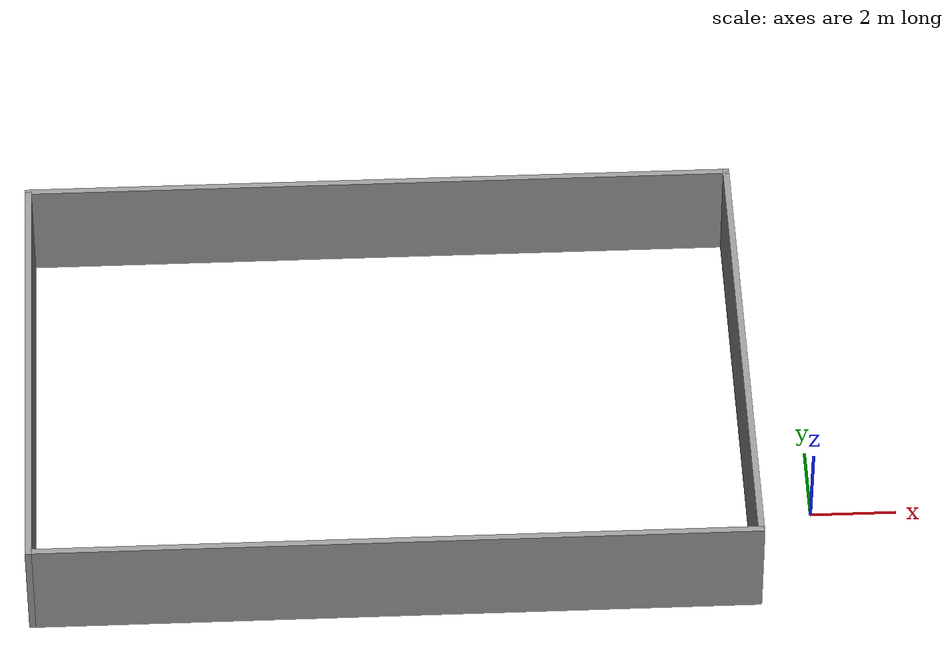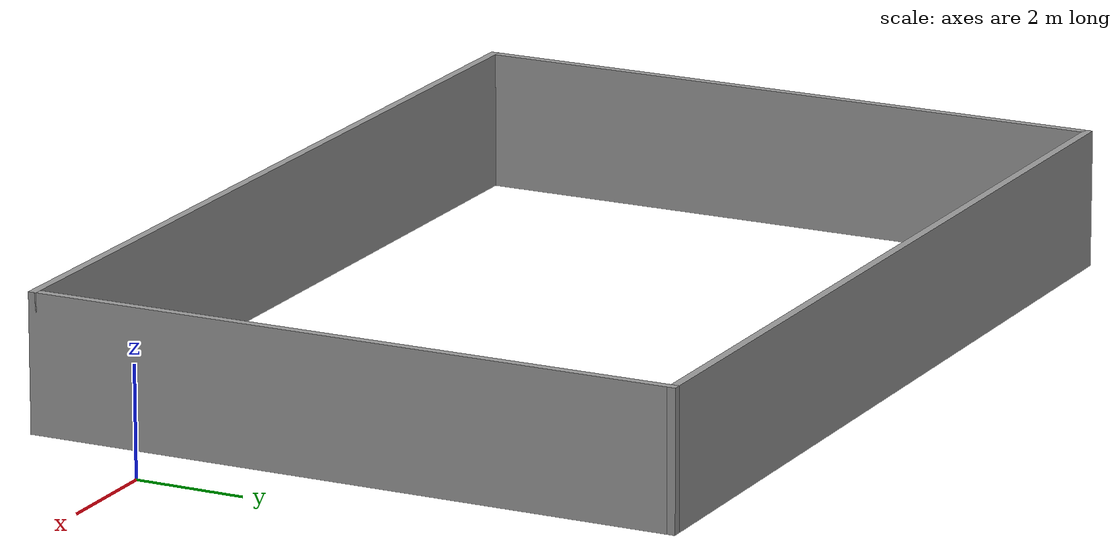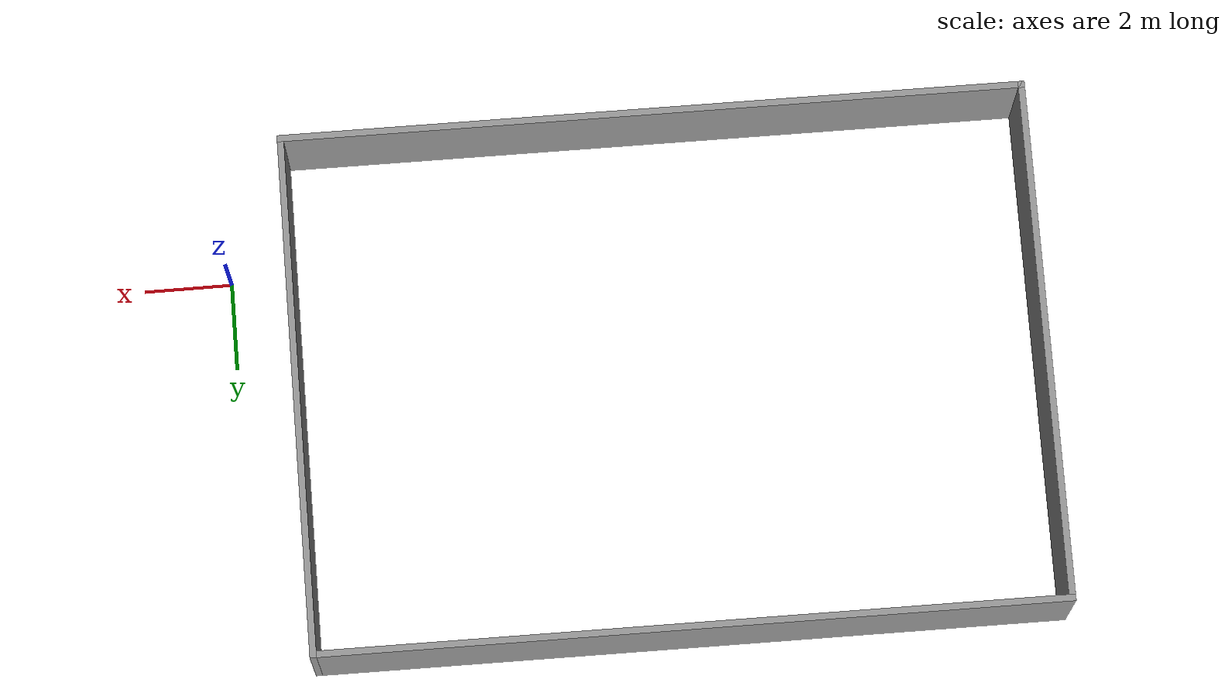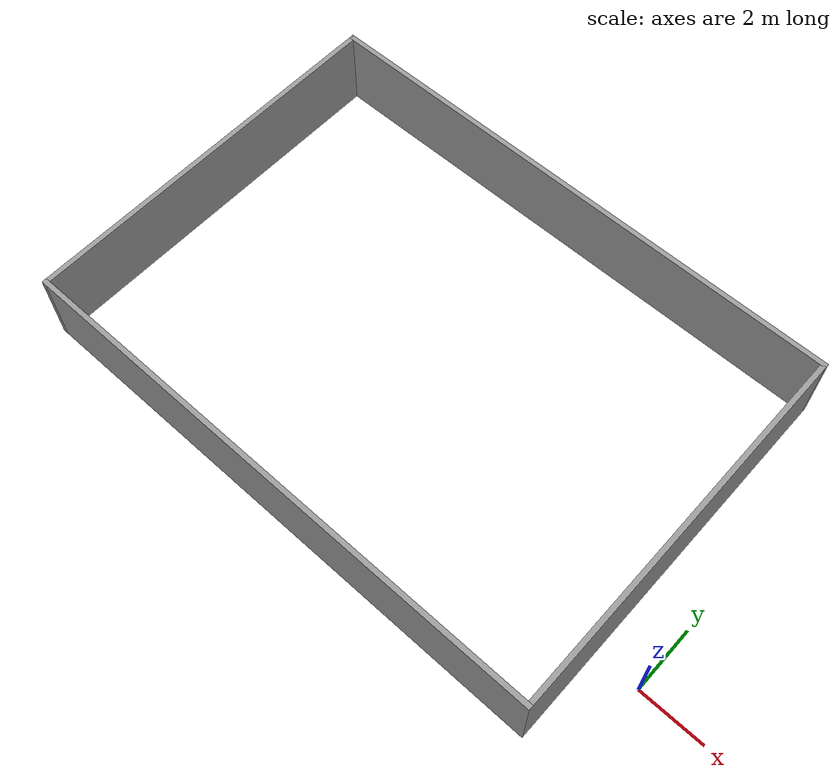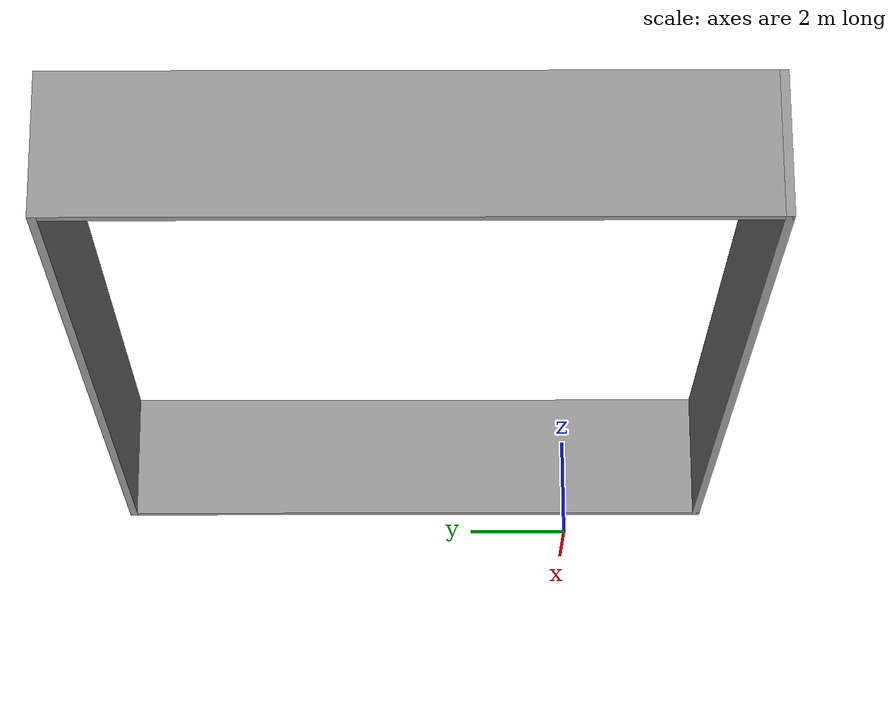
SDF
<?xml version='1.0'?>
<sdf version='1.7'>
  <model name='walls'>
    <pose>-9.18049 3.20668 0 0 -0 0</pose>
    <link name='Wall_11'>
      <collision name='Wall_11_Collision'>
        <geometry>
          <box>
            <size>12 0.15 2.5</size>
          </box>
        </geometry>
        <pose>0 0 1.25 0 -0 0</pose>
      </collision>
      <visual name='Wall_11_Visual'>
        <pose>0 0 1.25 0 -0 0</pose>
        <geometry>
          <box>
            <size>12 0.15 2.5</size>
          </box>
        </geometry>
        <material>
          <script>
            <uri>file://media/materials/scripts/gazebo.material</uri>
            <name>Gazebo/Grey</name>
          </script>
          <ambient>1 1 1 1</ambient>
        </material>
        <meta>
          <layer>0</layer>
        </meta>
      </visual>
      <pose>7.74451 0 0 0 -0 1.5708</pose>
    </link>
    <link name='Wall_12'>
      <collision name='Wall_12_Collision'>
        <geometry>
          <box>
            <size>17 0.15 2.5</size>
          </box>
        </geometry>
        <pose>0 0 1.25 0 -0 0</pose>
      </collision>
      <visual name='Wall_12_Visual'>
        <pose>0 0 1.25 0 -0 0</pose>
        <geometry>
          <box>
            <size>17 0.15 2.5</size>
          </box>
        </geometry>
        <material>
          <script>
            <uri>file://media/materials/scripts/gazebo.material</uri>
            <name>Gazebo/Grey</name>
          </script>
          <ambient>1 1 1 1</ambient>
        </material>
        <meta>
          <layer>0</layer>
        </meta>
      </visual>
      <pose>-0.680486 5.925 0 0 -0 3.14159</pose>
    </link>
    <link name='Wall_8'>
      <collision name='Wall_8_Collision'>
        <geometry>
          <box>
            <size>17 0.15 2.5</size>
          </box>
        </geometry>
        <pose>0 0 1.25 0 -0 0</pose>
      </collision>
      <visual name='Wall_8_Visual'>
        <pose>0 0 1.25 0 -0 0</pose>
        <geometry>
          <box>
            <size>17 0.15 2.5</size>
          </box>
        </geometry>
        <material>
          <script>
            <uri>file://media/materials/scripts/gazebo.material</uri>
            <name>Gazebo/Grey</name>
          </script>
          <ambient>1 1 1 1</ambient>
        </material>
        <meta>
          <layer>0</layer>
        </meta>
      </visual>
      <pose>-0.680486 -5.925 0 0 -0 3.14159</pose>
    </link>
    <link name='Wall_9'>
      <collision name='Wall_9_Collision'>
        <geometry>
          <box>
            <size>12 0.15 2.5</size>
          </box>
        </geometry>
        <pose>0 0 1.25 0 -0 0</pose>
      </collision>
      <visual name='Wall_9_Visual'>
        <pose>0 0 1.25 0 -0 0</pose>
        <geometry>
          <box>
            <size>12 0.15 2.5</size>
          </box>
        </geometry>
        <material>
          <script>
            <uri>file://media/materials/scripts/gazebo.material</uri>
            <name>Gazebo/Grey</name>
          </script>
          <ambient>1 1 1 1</ambient>
        </material>
        <meta>
          <layer>0</layer>
        </meta>
      </visual>
      <pose>-9.10549 0 0 0 -0 1.5708</pose>
    </link>
    <static>1</static>
  </model>
</sdf>
